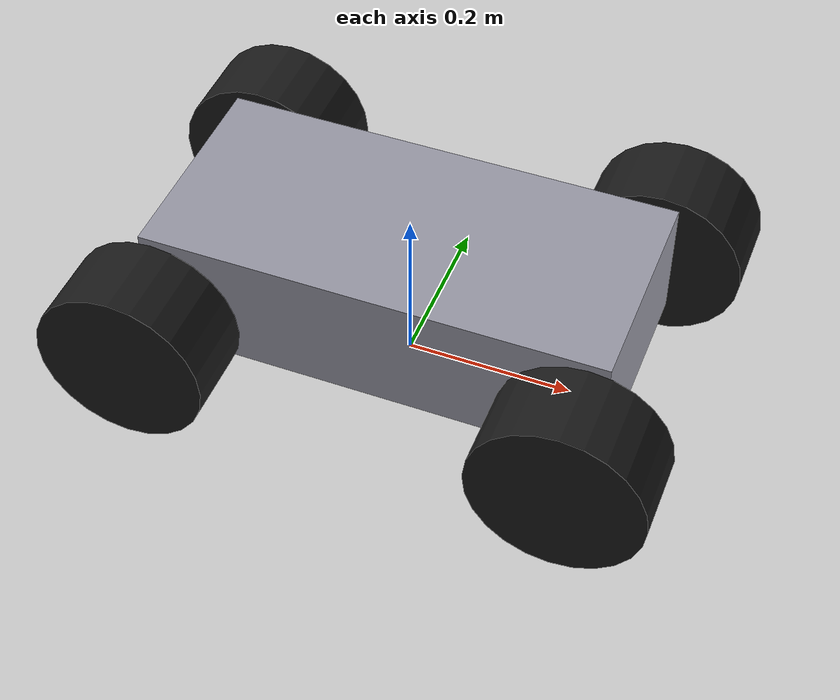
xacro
<?xml version="1.0"?>
<!-- 4-wheel skid-steer rover. Frames follow REP 103/105: x forward, y left, z up.
     Values marked ASSUMED are placeholders: replace them from your CAD/scale. -->
<robot name="rover" xmlns:xacro="http://www.ros.org/wiki/xacro">

  <xacro:arg name="can_interface" default="can0"/>
  <xacro:arg name="protocol" default="spark_max"/>   <!-- test_loopback for vcan bench tests -->

  <!-- ===== Given dimensions (inches converted to metres) ===== -->
  <xacro:property name="inch" value="0.0254"/>
  <xacro:property name="wheel_radius" value="${4 * inch}"/>      <!-- 8 in diameter -->
  <xacro:property name="wheelbase"    value="${20 * inch}"/>     <!-- front/back wheel centres -->
  <xacro:property name="track"        value="${15 * inch}"/>     <!-- left/right wheel centres -->

  <!-- ===== ASSUMED values ===== -->
  <xacro:property name="wheel_width"      value="0.10"/>
  <xacro:property name="wheel_mass"       value="1.0"/>
  <xacro:property name="chassis_length"   value="0.55"/>
  <xacro:property name="chassis_width"    value="0.26"/>   <!-- must fit between inner wheel faces -->
  <xacro:property name="chassis_height"   value="0.15"/>
  <xacro:property name="chassis_clearance" value="0.05"/>  <!-- ground to chassis bottom -->
  <xacro:property name="chassis_mass"     value="20.0"/>
  <xacro:property name="gear_ratio"       value="1.0"/>    <!-- motor revs per wheel rev -->
  <xacro:property name="max_wheel_velocity" value="20.0"/> <!-- wheel rad/s at 100% duty: measure -->

  <!-- ===== Inertia helpers ===== -->
  <xacro:macro name="cylinder_inertia" params="m r h">
    <inertia ixx="${m / 12 * (3 * r * r + h * h)}" iyy="${m / 12 * (3 * r * r + h * h)}"
             izz="${m * r * r / 2}" ixy="0" ixz="0" iyz="0"/>
  </xacro:macro>
  <xacro:macro name="box_inertia" params="m x y z">
    <inertia ixx="${m / 12 * (y * y + z * z)}" iyy="${m / 12 * (x * x + z * z)}"
             izz="${m / 12 * (x * x + y * y)}" ixy="0" ixz="0" iyz="0"/>
  </xacro:macro>

  <!-- ===== Links ===== -->
  <link name="base_footprint"/>

  <!-- base_link sits at axle height, centred between the four wheels -->
  <joint name="base_footprint_joint" type="fixed">
    <parent link="base_footprint"/>
    <child link="base_link"/>
    <origin xyz="0 0 ${wheel_radius}" rpy="0 0 0"/>
  </joint>

  <link name="base_link">
    <visual>
      <origin xyz="0 0 ${chassis_clearance + chassis_height / 2 - wheel_radius}" rpy="0 0 0"/>
      <geometry><box size="${chassis_length} ${chassis_width} ${chassis_height}"/></geometry>
      <material name="chassis_grey"><color rgba="0.6 0.6 0.65 1"/></material>
    </visual>
    <collision>
      <origin xyz="0 0 ${chassis_clearance + chassis_height / 2 - wheel_radius}" rpy="0 0 0"/>
      <geometry><box size="${chassis_length} ${chassis_width} ${chassis_height}"/></geometry>
    </collision>
    <inertial>
      <origin xyz="0 0 ${chassis_clearance + chassis_height / 2 - wheel_radius}" rpy="0 0 0"/>
      <mass value="${chassis_mass}"/>
      <xacro:box_inertia m="${chassis_mass}" x="${chassis_length}" y="${chassis_width}" z="${chassis_height}"/>
    </inertial>
  </link>

  <!-- ===== Wheel macro: continuous joint about +y; positive rotation drives the rover forward ===== -->
  <xacro:macro name="wheel" params="name x y">
    <link name="${name}_wheel">
      <visual>
        <origin xyz="0 0 0" rpy="${pi / 2} 0 0"/>
        <geometry><cylinder radius="${wheel_radius}" length="${wheel_width}"/></geometry>
        <material name="wheel_black"><color rgba="0.1 0.1 0.1 1"/></material>
      </visual>
      <collision>
        <origin xyz="0 0 0" rpy="${pi / 2} 0 0"/>
        <geometry><cylinder radius="${wheel_radius}" length="${wheel_width}"/></geometry>
      </collision>
      <inertial>
        <origin xyz="0 0 0" rpy="${pi / 2} 0 0"/>
        <mass value="${wheel_mass}"/>
        <xacro:cylinder_inertia m="${wheel_mass}" r="${wheel_radius}" h="${wheel_width}"/>
      </inertial>
    </link>
    <joint name="${name}_wheel_joint" type="continuous">
      <parent link="base_link"/>
      <child link="${name}_wheel"/>
      <origin xyz="${x} ${y} 0" rpy="0 0 0"/>
      <axis xyz="0 1 0"/>
    </joint>
  </xacro:macro>

  <xacro:wheel name="front_left"  x="${ wheelbase / 2}" y="${ track / 2}"/>
  <xacro:wheel name="rear_left"   x="${-wheelbase / 2}" y="${ track / 2}"/>
  <xacro:wheel name="front_right" x="${ wheelbase / 2}" y="${-track / 2}"/>
  <xacro:wheel name="rear_right"  x="${-wheelbase / 2}" y="${-track / 2}"/>

  <!-- ===== ros2_control (matches the spark_max_hardware package) =====
       Right-side motors are mirrored, so they are inverted to keep positive = forward. -->
  <ros2_control name="spark_max_system" type="system">
    <hardware>
      <plugin>spark_max_hardware/SparkMaxSystem</plugin>
      <param name="can_interface">$(arg can_interface)</param>
      <param name="protocol">$(arg protocol)</param>
      <param name="feedback_timeout_ms">200</param>
    </hardware>

    <joint name="front_left_wheel_joint">
      <command_interface name="velocity"/>
      <state_interface name="position"/><state_interface name="velocity"/><state_interface name="current"/>
      <param name="device_id">1</param>
      <param name="max_velocity">${max_wheel_velocity}</param>
      <param name="gear_ratio">${gear_ratio}</param>
    </joint>
    <joint name="rear_left_wheel_joint">
      <command_interface name="velocity"/>
      <state_interface name="position"/><state_interface name="velocity"/><state_interface name="current"/>
      <param name="device_id">2</param>
      <param name="max_velocity">${max_wheel_velocity}</param>
      <param name="gear_ratio">${gear_ratio}</param>
    </joint>
    <joint name="front_right_wheel_joint">
      <command_interface name="velocity"/>
      <state_interface name="position"/><state_interface name="velocity"/><state_interface name="current"/>
      <param name="device_id">3</param>
      <param name="max_velocity">${max_wheel_velocity}</param>
      <param name="gear_ratio">${gear_ratio}</param>
      <param name="invert">true</param>
    </joint>
    <joint name="rear_right_wheel_joint">
      <command_interface name="velocity"/>
      <state_interface name="position"/><state_interface name="velocity"/><state_interface name="current"/>
      <param name="device_id">4</param>
      <param name="max_velocity">${max_wheel_velocity}</param>
      <param name="gear_ratio">${gear_ratio}</param>
      <param name="invert">true</param>
    </joint>
  </ros2_control>
</robot>
